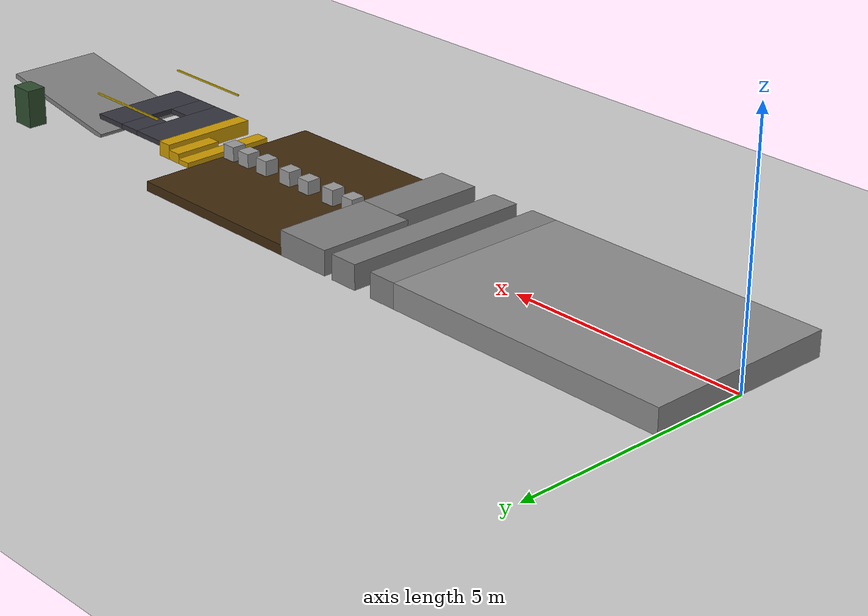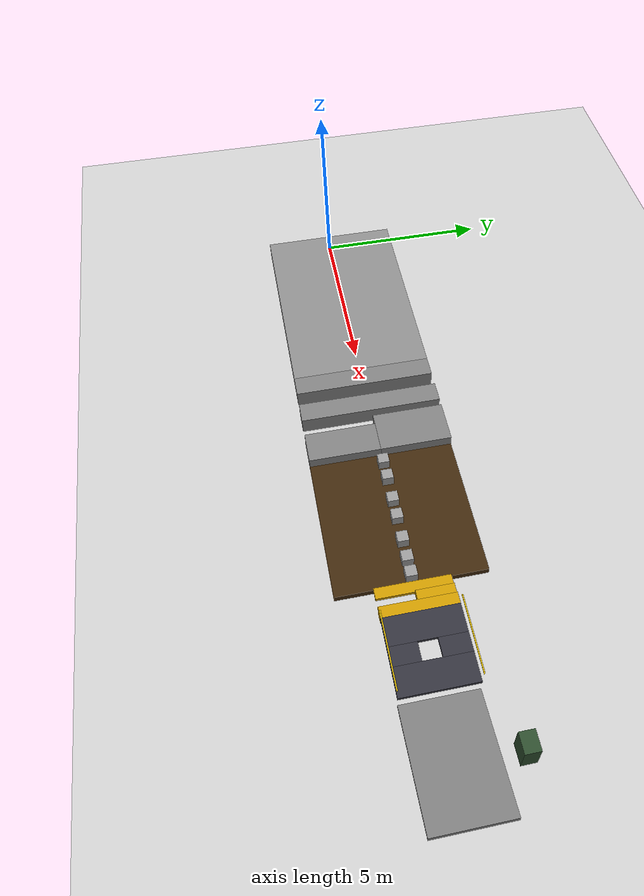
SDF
<?xml version="1.0" ?>
<sdf version="1.5">
    <world name="substation_inspection_elevation">

        <physics type="ode">
            <max_step_size>0.0002</max_step_size>
            <real_time_factor>1</real_time_factor>
            <real_time_update_rate>5000</real_time_update_rate>
            <gravity>0 0 -9.81</gravity>
            <ode>
                <solver>
                    <type>quick</type>
                    <iters>50</iters>
                    <sor>1.3</sor>
                </solver>
                <constraints>
                    <cfm>0.0</cfm>
                    <erp>0.2</erp>
                    <contact_max_correcting_vel>10.0</contact_max_correcting_vel>
                    <contact_surface_layer>0.001</contact_surface_layer>
                </constraints>
            </ode>
        </physics>

        <!-- 场景光照 -->
        <scene>
            <sky>
                <clouds><speed>12</speed></clouds>
            </sky>
        </scene>
        <include><uri>model://sun</uri></include>

        <!-- 默认无限大地平面 (z=0)，作为沟壑底部及最终地面 -->
        <include><uri>model://ground_plane</uri></include>

        <!-- ============================================================
           主场景模型
           ============================================================ -->
        <model name="substation_scene">
            <static>true</static>

            <link name="start_zone">
                <pose>3.0 0 0.25 0 0 0</pose>
                <collision name="start_zone_collision">
                    <geometry>
                        <!-- 长6m 宽4m 厚0.5m，顶面 z=0.5 -->
                        <box><size>6.0 4.0 0.5</size></box>
                    </geometry>
                    <surface>
                        <friction><ode><mu>1.0</mu><mu2>1.0</mu2></ode></friction>
                    </surface>
                </collision>
                <visual name="start_zone_visual">
                    <geometry>
                        <box><size>6.0 4.0 0.5</size></box>
                    </geometry>
                    <material>
                        <!-- 浅灰色水泥 -->
                        <ambient>0.45 0.45 0.45 1.0</ambient>
                        <diffuse>0.55 0.55 0.55 1.0</diffuse>
                    </material>
                </visual>
            </link>

            <!-- 电缆沟区跑道段1：x=6.0-6.6 (沟壑1前方) -->
            <link name="trench_seg_1">
                <pose>6.3 0 0.25 0 0 0</pose>
                <collision name="trench_seg_1_collision">
                    <geometry>
                        <box><size>0.6 4.0 0.5</size></box>
                    </geometry>
                    <surface>
                        <friction><ode><mu>1.0</mu><mu2>1.0</mu2></ode></friction>
                    </surface>
                </collision>
                <visual name="trench_seg_1_visual">
                    <geometry>
                        <box><size>0.6 4.0 0.5</size></box>
                    </geometry>
                    <material>
                        <ambient>0.40 0.40 0.40 1.0</ambient>
                        <diffuse>0.50 0.50 0.50 1.0</diffuse>
                    </material>
                </visual>
            </link>

            <!--
                【沟壑1】x=6.6-7.0，宽0.4m，横向全宽
                此处无任何碰撞体 → 视觉感知盲区，机器人必坠 0.5m 至地面
            -->

            <!-- 电缆沟区跑道段2：x=7.0-7.6 (沟壑1后方/沟壑2前方) -->
            <link name="trench_seg_2">
                <pose>7.3 0 0.25 0 0 0</pose>
                <collision name="trench_seg_2_collision">
                    <geometry>
                        <box><size>0.6 4.0 0.5</size></box>
                    </geometry>
                    <surface>
                        <friction><ode><mu>1.0</mu><mu2>1.0</mu2></ode></friction>
                    </surface>
                </collision>
                <visual name="trench_seg_2_visual">
                    <geometry>
                        <box><size>0.6 4.0 0.5</size></box>
                    </geometry>
                    <material>
                        <ambient>0.40 0.40 0.40 1.0</ambient>
                        <diffuse>0.50 0.50 0.50 1.0</diffuse>
                    </material>
                </visual>
            </link>

            <!--
                【沟壑2 - 斜向】宽约0.5m，左侧(x=7.6)比右侧(x=7.3)更靠前
                左半 (y<0): 缺口在 x=7.6-8.1
                右半 (y>0): 缺口在 x=7.3-7.8
                形成对角斜沟壑，增加跨越难度
            -->

            <!-- 电缆沟区跑道段3-左：x=8.1-9.0, y<0 (沟壑2左半后方) -->
            <link name="trench_seg_3L">
                <pose>8.55 -1.0 0.25 0 0 0</pose>
                <collision name="trench_seg_3L_collision">
                    <geometry>
                        <box><size>0.9 2.0 0.5</size></box>
                    </geometry>
                    <surface>
                        <friction><ode><mu>1.0</mu><mu2>1.0</mu2></ode></friction>
                    </surface>
                </collision>
                <visual name="trench_seg_3L_visual">
                    <geometry>
                        <box><size>0.9 2.0 0.5</size></box>
                    </geometry>
                    <material>
                        <ambient>0.40 0.40 0.40 1.0</ambient>
                        <diffuse>0.50 0.50 0.50 1.0</diffuse>
                    </material>
                </visual>
            </link>

            <!-- 电缆沟区跑道段3-右：x=7.8-9.0, y>0 (沟壑2右半后方) -->
            <link name="trench_seg_3R">
                <pose>8.4 1.0 0.25 0 0 0</pose>
                <collision name="trench_seg_3R_collision">
                    <geometry>
                        <box><size>1.2 2.0 0.5</size></box>
                    </geometry>
                    <surface>
                        <friction><ode><mu>1.0</mu><mu2>1.0</mu2></ode></friction>
                    </surface>
                </collision>
                <visual name="trench_seg_3R_visual">
                    <geometry>
                        <box><size>1.2 2.0 0.5</size></box>
                    </geometry>
                    <material>
                        <ambient>0.40 0.40 0.40 1.0</ambient>
                        <diffuse>0.50 0.50 0.50 1.0</diffuse>
                    </material>
                </visual>
            </link>

            <!-- 泥泞积水区底板：x=9.0-13.0, 厚0.2m, 顶面 z=0.2 -->
            <link name="mud_basin">
                <pose>11.0 0 0.1 0 0 0</pose>
                <collision name="mud_basin_collision">
                    <geometry>
                        <box><size>4.0 4.0 0.2</size></box>
                    </geometry>
                    <surface>
                        <friction><ode><mu>1.0</mu><mu2>1.0</mu2></ode></friction>
                    </surface>
                </collision>
                <visual name="mud_basin_visual">
                    <geometry>
                        <box><size>4.0 4.0 0.2</size></box>
                    </geometry>
                    <material>
                        <!-- 深褐色泥浆 -->
                        <ambient>0.12 0.08 0.02 1.0</ambient>
                        <diffuse>0.25 0.16 0.05 1.0</diffuse>
                    </material>
                </visual>
            </link>

            <!--
                踏步石墩 (Stepping Stones) —— 直线断桥
                Y=0 严格居中，X 方向随机间距，Z 方向微小高度差
                底盘 0.3×0.3m，高度 0.28~0.32m 不等 → 顶面 z≈0.48~0.52
            -->
            <!-- 石墩1: x=9.3, y=0, 高0.30m → 顶面 z=0.50 -->
            <link name="plinth_1">
                <pose>9.3 0 0.35 0 0 0</pose>
                <collision name="plinth_1_collision">
                    <geometry>
                        <box><size>0.3 0.3 0.30</size></box>
                    </geometry>
                    <surface>
                        <friction><ode><mu>1.0</mu><mu2>1.0</mu2></ode></friction>
                    </surface>
                </collision>
                <visual name="plinth_1_visual">
                    <geometry>
                        <box><size>0.3 0.3 0.30</size></box>
                    </geometry>
                    <material>
                        <!-- 混凝土灰 -->
                        <ambient>0.45 0.45 0.45 1.0</ambient>
                        <diffuse>0.60 0.60 0.60 1.0</diffuse>
                    </material>
                </visual>
            </link>

            <!-- 石墩2: x=9.85 (间距0.25m), 高0.32m → 顶面 z=0.52 -->
            <link name="plinth_2">
                <pose>9.85 0 0.36 0 0 0</pose>
                <collision name="plinth_2_collision">
                    <geometry>
                        <box><size>0.3 0.3 0.32</size></box>
                    </geometry>
                    <surface>
                        <friction><ode><mu>1.0</mu><mu2>1.0</mu2></ode></friction>
                    </surface>
                </collision>
                <visual name="plinth_2_visual">
                    <geometry>
                        <box><size>0.3 0.3 0.32</size></box>
                    </geometry>
                    <material>
                        <ambient>0.45 0.45 0.45 1.0</ambient>
                        <diffuse>0.60 0.60 0.60 1.0</diffuse>
                    </material>
                </visual>
            </link>

            <!-- 石墩3: x=10.55 (间距0.4m), 高0.28m → 顶面 z=0.48 -->
            <link name="plinth_3">
                <pose>10.55 0 0.34 0 0 0</pose>
                <collision name="plinth_3_collision">
                    <geometry>
                        <box><size>0.3 0.3 0.28</size></box>
                    </geometry>
                    <surface>
                        <friction><ode><mu>1.0</mu><mu2>1.0</mu2></ode></friction>
                    </surface>
                </collision>
                <visual name="plinth_3_visual">
                    <geometry>
                        <box><size>0.3 0.3 0.28</size></box>
                    </geometry>
                    <material>
                        <ambient>0.45 0.45 0.45 1.0</ambient>
                        <diffuse>0.60 0.60 0.60 1.0</diffuse>
                    </material>
                </visual>
            </link>

            <!-- 石墩4: x=11.1 (间距0.25m), 高0.30m → 顶面 z=0.50 -->
            <link name="plinth_4">
                <pose>11.1 0 0.35 0 0 0</pose>
                <collision name="plinth_4_collision">
                    <geometry>
                        <box><size>0.3 0.3 0.30</size></box>
                    </geometry>
                    <surface>
                        <friction><ode><mu>1.0</mu><mu2>1.0</mu2></ode></friction>
                    </surface>
                </collision>
                <visual name="plinth_4_visual">
                    <geometry>
                        <box><size>0.3 0.3 0.30</size></box>
                    </geometry>
                    <material>
                        <ambient>0.45 0.45 0.45 1.0</ambient>
                        <diffuse>0.60 0.60 0.60 1.0</diffuse>
                    </material>
                </visual>
            </link>

            <!-- 石墩5: x=11.8 (间距0.4m), 高0.31m → 顶面 z=0.51 -->
            <link name="plinth_5">
                <pose>11.8 0 0.355 0 0 0</pose>
                <collision name="plinth_5_collision">
                    <geometry>
                        <box><size>0.3 0.3 0.31</size></box>
                    </geometry>
                    <surface>
                        <friction><ode><mu>1.0</mu><mu2>1.0</mu2></ode></friction>
                    </surface>
                </collision>
                <visual name="plinth_5_visual">
                    <geometry>
                        <box><size>0.3 0.3 0.31</size></box>
                    </geometry>
                    <material>
                        <ambient>0.45 0.45 0.45 1.0</ambient>
                        <diffuse>0.60 0.60 0.60 1.0</diffuse>
                    </material>
                </visual>
            </link>

            <!-- 石墩6: x=12.35 (间距0.25m), 高0.29m → 顶面 z=0.49 -->
            <link name="plinth_6">
                <pose>12.35 0 0.345 0 0 0</pose>
                <collision name="plinth_6_collision">
                    <geometry>
                        <box><size>0.3 0.3 0.29</size></box>
                    </geometry>
                    <surface>
                        <friction><ode><mu>1.0</mu><mu2>1.0</mu2></ode></friction>
                    </surface>
                </collision>
                <visual name="plinth_6_visual">
                    <geometry>
                        <box><size>0.3 0.3 0.29</size></box>
                    </geometry>
                    <material>
                        <ambient>0.45 0.45 0.45 1.0</ambient>
                        <diffuse>0.60 0.60 0.60 1.0</diffuse>
                    </material>
                </visual>
            </link>

            <!-- 石墩7: x=12.8 (间距0.15m, 最后一阶紧贴楼梯), 高0.30m → 顶面 z=0.50 -->
            <link name="plinth_7">
                <pose>12.8 0 0.35 0 0 0</pose>
                <collision name="plinth_7_collision">
                    <geometry>
                        <box><size>0.3 0.3 0.30</size></box>
                    </geometry>
                    <surface>
                        <friction><ode><mu>1.0</mu><mu2>1.0</mu2></ode></friction>
                    </surface>
                </collision>
                <visual name="plinth_7_visual">
                    <geometry>
                        <box><size>0.3 0.3 0.30</size></box>
                    </geometry>
                    <material>
                        <ambient>0.45 0.45 0.45 1.0</ambient>
                        <diffuse>0.60 0.60 0.60 1.0</diffuse>
                    </material>
                </visual>
            </link>

            <!-- 台阶1（最下级）：x=13.0-13.3, z=0.2→0.3, 高0.1m, 完整 -->
            <link name="step_1">
                <pose>13.15 0 0.25 0 0 0</pose>
                <collision name="step_1_collision">
                    <geometry>
                        <box><size>0.3 2.0 0.1</size></box>
                    </geometry>
                    <surface>
                        <friction><ode><mu>1.0</mu><mu2>1.0</mu2></ode></friction>
                    </surface>
                </collision>
                <visual name="step_1_visual">
                    <geometry>
                        <box><size>0.3 2.0 0.1</size></box>
                    </geometry>
                    <material>
                        <!-- 工业安全黄 -->
                        <ambient>0.5 0.4 0.0 1.0</ambient>
                        <diffuse>0.8 0.6 0.0 1.0</diffuse>
                    </material>
                </visual>
            </link>

            <!--
                台阶2（中间级）：x=13.3-13.6, z=0.2→0.4, 高0.2m
                【破损】仅保留右半部分 (y>0)，左半(y<0)缺失
            -->
            <!-- 台阶2-右半（完好部分）：x=13.3-13.6, y=0-1.0 -->
            <link name="step_2_right">
                <pose>13.45 0.5 0.30 0 0 0</pose>
                <collision name="step_2_right_collision">
                    <geometry>
                        <box><size>0.3 1.0 0.2</size></box>
                    </geometry>
                    <surface>
                        <friction><ode><mu>1.0</mu><mu2>1.0</mu2></ode></friction>
                    </surface>
                </collision>
                <visual name="step_2_right_visual">
                    <geometry>
                        <box><size>0.3 1.0 0.2</size></box>
                    </geometry>
                    <material>
                        <ambient>0.5 0.4 0.0 1.0</ambient>
                        <diffuse>0.8 0.6 0.0 1.0</diffuse>
                    </material>
                </visual>
            </link>
            <!--
                【台阶2左半缺失】x=13.3-13.6, y=-1.0~0
                此处无任何碰撞体，机器人左足将踩空坠落
            -->

            <!-- 台阶3（最上级）：x=13.6-13.9, z=0.2→0.5, 高0.3m, 完整 -->
            <link name="step_3">
                <pose>13.75 0 0.35 0 0 0</pose>
                <collision name="step_3_collision">
                    <geometry>
                        <box><size>0.3 2.0 0.3</size></box>
                    </geometry>
                    <surface>
                        <friction><ode><mu>1.0</mu><mu2>1.0</mu2></ode></friction>
                    </surface>
                </collision>
                <visual name="step_3_visual">
                    <geometry>
                        <box><size>0.3 2.0 0.3</size></box>
                    </geometry>
                    <material>
                        <ambient>0.5 0.4 0.0 1.0</ambient>
                        <diffuse>0.8 0.6 0.0 1.0</diffuse>
                    </material>
                </visual>
            </link>

            <!--
                金属网格观测平台：x=13.9-15.9, 宽2.0m, 厚0.1m, 顶面 z=0.5
                【中央检修敞口】0.5m × 0.5m 方形洞口
                平台由4块 Box 拼成"回"字形框架，中央留空
            -->
            <!-- 平台前条：x=13.9-14.65, 全宽 -->
            <link name="platform_front">
                <pose>14.275 0 0.45 0 0 0</pose>
                <collision name="platform_front_collision">
                    <geometry>
                        <box><size>0.75 2.0 0.1</size></box>
                    </geometry>
                    <surface>
                        <friction><ode><mu>1.0</mu><mu2>1.0</mu2></ode></friction>
                    </surface>
                </collision>
                <visual name="platform_front_visual">
                    <geometry>
                        <box><size>0.75 2.0 0.1</size></box>
                    </geometry>
                    <material>
                        <!-- 深色金属灰，模拟工业钢格栅 -->
                        <ambient>0.10 0.10 0.12 1.0</ambient>
                        <diffuse>0.20 0.20 0.24 1.0</diffuse>
                        <specular>0.3 0.3 0.3 1.0</specular>
                    </material>
                </visual>
            </link>

            <!-- 平台后条：x=15.15-15.9, 全宽 -->
            <link name="platform_back">
                <pose>15.525 0 0.45 0 0 0</pose>
                <collision name="platform_back_collision">
                    <geometry>
                        <box><size>0.75 2.0 0.1</size></box>
                    </geometry>
                    <surface>
                        <friction><ode><mu>1.0</mu><mu2>1.0</mu2></ode></friction>
                    </surface>
                </collision>
                <visual name="platform_back_visual">
                    <geometry>
                        <box><size>0.75 2.0 0.1</size></box>
                    </geometry>
                    <material>
                        <ambient>0.10 0.10 0.12 1.0</ambient>
                        <diffuse>0.20 0.20 0.24 1.0</diffuse>
                        <specular>0.3 0.3 0.3 1.0</specular>
                    </material>
                </visual>
            </link>

            <!-- 平台左条：x=14.65-15.15, y=-1.0~-0.25 (洞口左侧) -->
            <link name="platform_left">
                <pose>14.9 -0.625 0.45 0 0 0</pose>
                <collision name="platform_left_collision">
                    <geometry>
                        <box><size>0.5 0.75 0.1</size></box>
                    </geometry>
                    <surface>
                        <friction><ode><mu>1.0</mu><mu2>1.0</mu2></ode></friction>
                    </surface>
                </collision>
                <visual name="platform_left_visual">
                    <geometry>
                        <box><size>0.5 0.75 0.1</size></box>
                    </geometry>
                    <material>
                        <ambient>0.10 0.10 0.12 1.0</ambient>
                        <diffuse>0.20 0.20 0.24 1.0</diffuse>
                        <specular>0.3 0.3 0.3 1.0</specular>
                    </material>
                </visual>
            </link>

            <!-- 平台右条：x=14.65-15.15, y=0.25~1.0 (洞口右侧) -->
            <link name="platform_right">
                <pose>14.9 0.625 0.45 0 0 0</pose>
                <collision name="platform_right_collision">
                    <geometry>
                        <box><size>0.5 0.75 0.1</size></box>
                    </geometry>
                    <surface>
                        <friction><ode><mu>1.0</mu><mu2>1.0</mu2></ode></friction>
                    </surface>
                </collision>
                <visual name="platform_right_visual">
                    <geometry>
                        <box><size>0.5 0.75 0.1</size></box>
                    </geometry>
                    <material>
                        <ambient>0.10 0.10 0.12 1.0</ambient>
                        <diffuse>0.20 0.20 0.24 1.0</diffuse>
                        <specular>0.3 0.3 0.3 1.0</specular>
                    </material>
                </visual>
            </link>
            <!--
                【中央检修敞口】x=14.65-15.15, y=-0.25-0.25
                0.5m × 0.5m 方形洞口，无碰撞体，机器人坠落至泥泞区(z=0.2)
            -->

            <!-- 平台护栏 - 左侧 -->
            <link name="guardrail_left_top">
                <pose>14.9 1.01 0.95 0 0 0</pose>
                <collision name="guardrail_left_top_collision">
                    <geometry>
                        <box><size>2.0 0.03 0.03</size></box>
                    </geometry>
                    <surface>
                        <friction><ode><mu>1.0</mu><mu2>1.0</mu2></ode></friction>
                    </surface>
                </collision>
                <visual name="guardrail_left_top_visual">
                    <geometry>
                        <box><size>2.0 0.03 0.03</size></box>
                    </geometry>
                    <material>
                        <!-- 黄色安全护栏 -->
                        <ambient>0.6 0.5 0.0 1.0</ambient>
                        <diffuse>0.9 0.75 0.0 1.0</diffuse>
                    </material>
                </visual>
            </link>

            <!-- 平台护栏 - 右侧 -->
            <link name="guardrail_right_top">
                <pose>14.9 -1.01 0.95 0 0 0</pose>
                <collision name="guardrail_right_top_collision">
                    <geometry>
                        <box><size>2.0 0.03 0.03</size></box>
                    </geometry>
                    <surface>
                        <friction><ode><mu>1.0</mu><mu2>1.0</mu2></ode></friction>
                    </surface>
                </collision>
                <visual name="guardrail_right_top_visual">
                    <geometry>
                        <box><size>2.0 0.03 0.03</size></box>
                    </geometry>
                    <material>
                        <ambient>0.6 0.5 0.0 1.0</ambient>
                        <diffuse>0.9 0.75 0.0 1.0</diffuse>
                    </material>
                </visual>
            </link>

            <link name="exit_ramp">
                <!--
                    x_center = (15.9 + 18.9) / 2 = 17.4
                    z_center = (0.5 + 0.0) / 2 = 0.25
                    pitch = -atan(0.5/3) = -0.165 rad (绕Y轴下倾)
                -->
                <pose>17.4 0 0.25 0 -0.165 0</pose>
                <collision name="exit_ramp_collision">
                    <geometry>
                        <box><size>3.041 2.0 0.1</size></box>
                    </geometry>
                    <surface>
                        <friction><ode><mu>1.0</mu><mu2>1.0</mu2></ode></friction>
                    </surface>
                </collision>
                <visual name="exit_ramp_visual">
                    <geometry>
                        <box><size>3.041 2.0 0.1</size></box>
                    </geometry>
                    <material>
                        <!-- 防滑混凝土灰 -->
                        <ambient>0.35 0.35 0.35 1.0</ambient>
                        <diffuse>0.50 0.50 0.50 1.0</diffuse>
                    </material>
                </visual>
            </link>

            <link name="inspection_cabinet">
                <pose>17.5 1.6 0.4 0 0 0</pose>
                <collision name="inspection_cabinet_collision">
                    <geometry>
                        <box><size>0.5 0.4 0.8</size></box>
                    </geometry>
                    <surface>
                        <friction><ode><mu>1.0</mu><mu2>1.0</mu2></ode></friction>
                    </surface>
                </collision>
                <visual name="inspection_cabinet_visual">
                    <geometry>
                        <box><size>0.5 0.4 0.8</size></box>
                    </geometry>
                    <material>
                        <!-- 工业电气柜绿色 -->
                        <ambient>0.08 0.13 0.08 1.0</ambient>
                        <diffuse>0.18 0.30 0.18 1.0</diffuse>
                    </material>
                </visual>
            </link>

        </model>
    </world>
</sdf>
